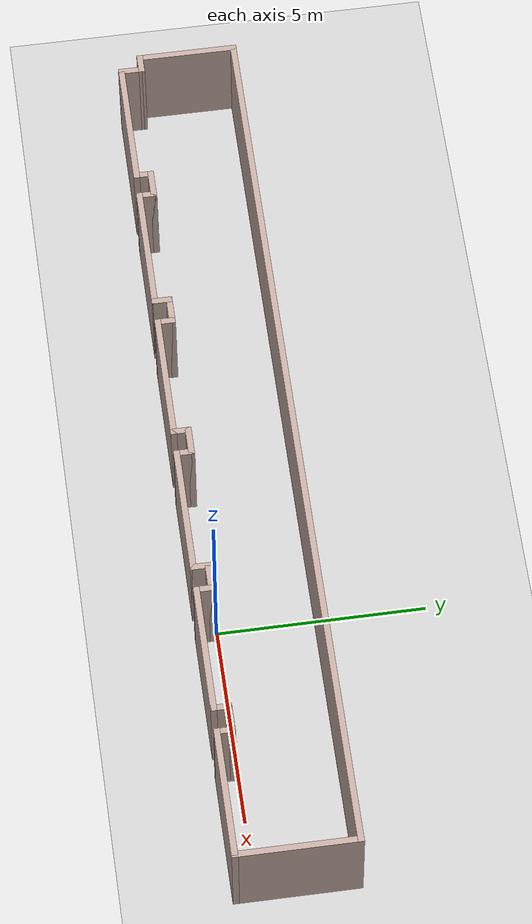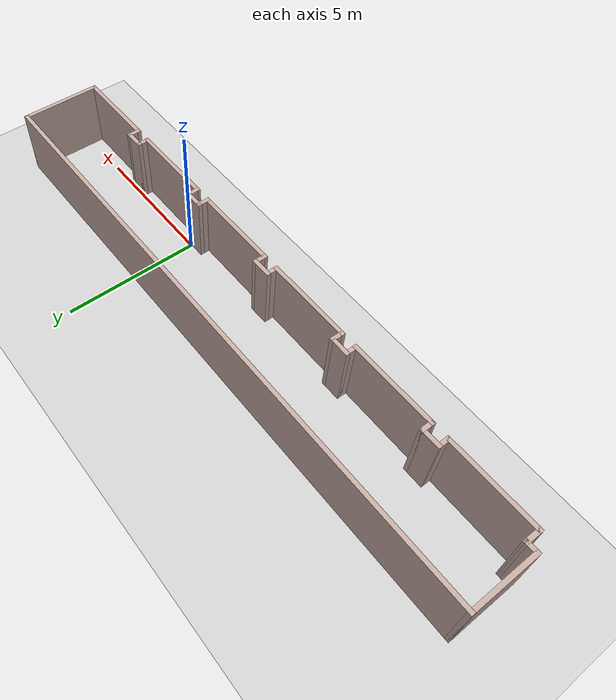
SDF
<sdf version="1.7">
 <world name="default">
  <light name="sun" type="directional">
   <pose>0 0 10 0 -0 0</pose>
   <diffuse>0.8 0.8 0.8 1</diffuse>
   <specular>0.2 0.2 0.2 1</specular>
   <attenuation>
    <range>1000</range>
    <constant>0.9</constant>
    <linear>0.01</linear>
    <quadratic>0.001</quadratic>
   </attenuation>
   <direction>-0.5 0.1 -0.9</direction>
   <spot><inner_angle>0</inner_angle><outer_angle>0</outer_angle><falloff>0</falloff></spot>
  </light>
  <plugin name="gazebo_ros_state" filename="libgazebo_ros_state.so">
   <ros>
    <namespace>/</namespace>
    <remapping>model_states:=model_states</remapping>
    <remapping>link_states:=link_states</remapping>
   </ros>
   <update_rate>50.0</update_rate>
  </plugin>
  <model name="ground_plane">
   <static>1</static>
   <link name="link">
    <collision name="collision">
     <geometry><plane><normal>0 0 1</normal><size>100 100</size></plane></geometry>
     <surface><friction><ode><mu>100</mu><mu2>50</mu2></ode></friction></surface>
    </collision>
    <visual name="visual">
     <cast_shadows>0</cast_shadows>
     <geometry><plane><normal>0 0 1</normal><size>100 100</size></plane></geometry>
     <material>
      <script><uri>file://media/materials/scripts/gazebo.material</uri><name>Gazebo/Grey</name></script>
     </material>
    </visual>
   </link>
  </model>
  <gravity>0 0 -9.8</gravity>
  <magnetic_field>6e-06 2.3e-05 -4.2e-05</magnetic_field>
  <atmosphere type="adiabatic"/>
  <physics type="ode">
   <max_step_size>0.001</max_step_size>
   <real_time_factor>1</real_time_factor>
   <real_time_update_rate>1000</real_time_update_rate>
  </physics>
  <scene><ambient>0.4 0.4 0.4 1</ambient><background>0.7 0.7 0.7 1</background><shadows>1</shadows></scene>
  <audio><device>default</device></audio>
  <spherical_coordinates>
   <surface_model>EARTH_WGS84</surface_model>
   <latitude_deg>0</latitude_deg>
   <longitude_deg>0</longitude_deg>
   <elevation>0</elevation>
   <heading_deg>0</heading_deg>
  </spherical_coordinates>
  <model name="school_8F">
   <allow_auto_disable>false</allow_auto_disable>
   <pose>-4.0978 0.96821 0 0 -0 0</pose>
   <link name="Wall_0">
    <collision name="Wall_0_Collision">
     <geometry><box><size>22.16 0.15 2.5</size></box></geometry>
     <pose>0 0 1.25 0 -0 0</pose>
    </collision>
    <visual name="Wall_0_Visual">
     <pose>0 0 1.25 0 -0 0</pose>
     <geometry><box><size>22.16 0.15 2.5</size></box></geometry>
     <material>
      <script><uri>file://media/materials/scripts/gazebo.material</uri><name>Gazebo/Grey</name></script>
      <ambient>0.760784 0.662745 0.627451 1</ambient>
     </material>
     <meta><layer>0</layer></meta>
    </visual>
    <pose>0 1.42524 0 0 -0 0</pose>
   </link>
   <link name="Wall_10">
    <collision name="Wall_10_Collision">
     <geometry><box><size>0.75 0.15 2.5</size></box></geometry>
     <pose>0 0 1.25 0 -0 0</pose>
    </collision>
    <visual name="Wall_10_Visual">
     <pose>0 0 1.25 0 -0 0</pose>
     <geometry><box><size>0.75 0.15 2.5</size></box></geometry>
     <material>
      <script><uri>file://media/materials/scripts/gazebo.material</uri><name>Gazebo/Grey</name></script>
      <ambient>0.760784 0.662745 0.627451 1</ambient>
     </material>
     <meta><layer>0</layer></meta>
    </visual>
    <pose>3.905 -1.07476 0 0 -0 3.14159</pose>
   </link>
   <link name="Wall_11">
    <collision name="Wall_11_Collision">
     <geometry><box><size>0.5 0.15 2.5</size></box></geometry>
     <pose>0 0 1.25 0 -0 0</pose>
    </collision>
    <visual name="Wall_11_Visual">
     <pose>0 0 1.25 0 -0 0</pose>
     <geometry><box><size>0.5 0.15 2.5</size></box></geometry>
     <material>
      <script><uri>file://media/materials/scripts/gazebo.material</uri><name>Gazebo/Grey</name></script>
      <ambient>0.760784 0.662745 0.627451 1</ambient>
     </material>
     <meta><layer>0</layer></meta>
    </visual>
    <pose>3.605 -1.24976 0 0 -0 -1.5708</pose>
   </link>
   <link name="Wall_13">
    <collision name="Wall_13_Collision">
     <geometry><box><size>3.25 0.15 2.5</size></box></geometry>
     <pose>0 0 1.25 0 -0 0</pose>
    </collision>
    <visual name="Wall_13_Visual">
     <pose>0 0 1.25 0 -0 0</pose>
     <geometry><box><size>3.25 0.15 2.5</size></box></geometry>
     <material>
      <script><uri>file://media/materials/scripts/gazebo.material</uri><name>Gazebo/Grey</name></script>
      <ambient>0.760784 0.662745 0.627451 1</ambient>
     </material>
     <meta><layer>0</layer></meta>
    </visual>
    <pose>2.055 -1.42476 0 0 -0 3.14159</pose>
   </link>
   <link name="Wall_14">
    <collision name="Wall_14_Collision">
     <geometry><box><size>0.5 0.15 2.5</size></box></geometry>
     <pose>0 0 1.25 0 -0 0</pose>
    </collision>
    <visual name="Wall_14_Visual">
     <pose>0 0 1.25 0 -0 0</pose>
     <geometry><box><size>0.5 0.15 2.5</size></box></geometry>
     <material>
      <script><uri>file://media/materials/scripts/gazebo.material</uri><name>Gazebo/Grey</name></script>
      <ambient>0.760784 0.662745 0.627451 1</ambient>
     </material>
     <meta><layer>0</layer></meta>
    </visual>
    <pose>0.505 -1.24976 0 0 -0 1.5708</pose>
   </link>
   <link name="Wall_15">
    <collision name="Wall_15_Collision">
     <geometry><box><size>0.75 0.15 2.5</size></box></geometry>
     <pose>0 0 1.25 0 -0 0</pose>
    </collision>
    <visual name="Wall_15_Visual">
     <pose>0 0 1.25 0 -0 0</pose>
     <geometry><box><size>0.75 0.15 2.5</size></box></geometry>
     <material>
      <script><uri>file://media/materials/scripts/gazebo.material</uri><name>Gazebo/Grey</name></script>
      <ambient>0.760784 0.662745 0.627451 1</ambient>
     </material>
     <meta><layer>0</layer></meta>
    </visual>
    <pose>0.205 -1.07476 0 0 -0 3.14159</pose>
   </link>
   <link name="Wall_16">
    <collision name="Wall_16_Collision">
     <geometry><box><size>0.5 0.15 2.5</size></box></geometry>
     <pose>0 0 1.25 0 -0 0</pose>
    </collision>
    <visual name="Wall_16_Visual">
     <pose>0 0 1.25 0 -0 0</pose>
     <geometry><box><size>0.5 0.15 2.5</size></box></geometry>
     <material>
      <script><uri>file://media/materials/scripts/gazebo.material</uri><name>Gazebo/Grey</name></script>
      <ambient>0.760784 0.662745 0.627451 1</ambient>
     </material>
     <meta><layer>0</layer></meta>
    </visual>
    <pose>-0.095 -1.24976 0 0 -0 -1.5708</pose>
   </link>
   <link name="Wall_17">
    <collision name="Wall_17_Collision">
     <geometry><box><size>3.25 0.15 2.5</size></box></geometry>
     <pose>0 0 1.25 0 -0 0</pose>
    </collision>
    <visual name="Wall_17_Visual">
     <pose>0 0 1.25 0 -0 0</pose>
     <geometry><box><size>3.25 0.15 2.5</size></box></geometry>
     <material>
      <script><uri>file://media/materials/scripts/gazebo.material</uri><name>Gazebo/Grey</name></script>
      <ambient>0.760784 0.662745 0.627451 1</ambient>
     </material>
     <meta><layer>0</layer></meta>
    </visual>
    <pose>-1.645 -1.42476 0 0 -0 3.14159</pose>
   </link>
   <link name="Wall_18">
    <collision name="Wall_18_Collision">
     <geometry><box><size>0.5 0.15 2.5</size></box></geometry>
     <pose>0 0 1.25 0 -0 0</pose>
    </collision>
    <visual name="Wall_18_Visual">
     <pose>0 0 1.25 0 -0 0</pose>
     <geometry><box><size>0.5 0.15 2.5</size></box></geometry>
     <material>
      <script><uri>file://media/materials/scripts/gazebo.material</uri><name>Gazebo/Grey</name></script>
      <ambient>0.760784 0.662745 0.627451 1</ambient>
     </material>
     <meta><layer>0</layer></meta>
    </visual>
    <pose>-3.195 -1.24976 0 0 -0 1.5708</pose>
   </link>
   <link name="Wall_2">
    <collision name="Wall_2_Collision">
     <geometry><box><size>3 0.15 2.5</size></box></geometry>
     <pose>0 0 1.25 0 -0 0</pose>
    </collision>
    <visual name="Wall_2_Visual">
     <pose>0 0 1.25 0 -0 0</pose>
     <geometry><box><size>3 0.15 2.5</size></box></geometry>
     <material>
      <script><uri>file://media/materials/scripts/gazebo.material</uri><name>Gazebo/Grey</name></script>
      <ambient>0.760784 0.662745 0.627451 1</ambient>
     </material>
     <meta><layer>0</layer></meta>
    </visual>
    <pose>11.005 0.00024 0 0 -0 -1.5708</pose>
   </link>
   <link name="Wall_20">
    <collision name="Wall_20_Collision">
     <geometry><box><size>0.75 0.15 2.5</size></box></geometry>
     <pose>0 0 1.25 0 -0 0</pose>
    </collision>
    <visual name="Wall_20_Visual">
     <pose>0 0 1.25 0 -0 0</pose>
     <geometry><box><size>0.75 0.15 2.5</size></box></geometry>
     <material>
      <script><uri>file://media/materials/scripts/gazebo.material</uri><name>Gazebo/Grey</name></script>
      <ambient>0.760784 0.662745 0.627451 1</ambient>
     </material>
     <meta><layer>0</layer></meta>
    </visual>
    <pose>-3.495 -1.07476 0 0 -0 3.14159</pose>
   </link>
   <link name="Wall_21">
    <collision name="Wall_21_Collision">
     <geometry><box><size>0.5 0.15 2.5</size></box></geometry>
     <pose>0 0 1.25 0 -0 0</pose>
    </collision>
    <visual name="Wall_21_Visual">
     <pose>0 0 1.25 0 -0 0</pose>
     <geometry><box><size>0.5 0.15 2.5</size></box></geometry>
     <material>
      <script><uri>file://media/materials/scripts/gazebo.material</uri><name>Gazebo/Grey</name></script>
      <ambient>0.760784 0.662745 0.627451 1</ambient>
     </material>
     <meta><layer>0</layer></meta>
    </visual>
    <pose>-3.795 -1.24976 0 0 -0 -1.5708</pose>
   </link>
   <link name="Wall_23">
    <collision name="Wall_23_Collision">
     <geometry><box><size>3.25 0.15 2.5</size></box></geometry>
     <pose>0 0 1.25 0 -0 0</pose>
    </collision>
    <visual name="Wall_23_Visual">
     <pose>0 0 1.25 0 -0 0</pose>
     <geometry><box><size>3.25 0.15 2.5</size></box></geometry>
     <material>
      <script><uri>file://media/materials/scripts/gazebo.material</uri><name>Gazebo/Grey</name></script>
      <ambient>0.760784 0.662745 0.627451 1</ambient>
     </material>
     <meta><layer>0</layer></meta>
    </visual>
    <pose>-5.345 -1.42476 0 0 -0 3.14159</pose>
   </link>
   <link name="Wall_24">
    <collision name="Wall_24_Collision">
     <geometry><box><size>0.5 0.15 2.5</size></box></geometry>
     <pose>0 0 1.25 0 -0 0</pose>
    </collision>
    <visual name="Wall_24_Visual">
     <pose>0 0 1.25 0 -0 0</pose>
     <geometry><box><size>0.5 0.15 2.5</size></box></geometry>
     <material>
      <script><uri>file://media/materials/scripts/gazebo.material</uri><name>Gazebo/Grey</name></script>
      <ambient>0.760784 0.662745 0.627451 1</ambient>
     </material>
     <meta><layer>0</layer></meta>
    </visual>
    <pose>-6.895 -1.24976 0 0 -0 1.5708</pose>
   </link>
   <link name="Wall_25">
    <collision name="Wall_25_Collision">
     <geometry><box><size>0.75 0.15 2.5</size></box></geometry>
     <pose>0 0 1.25 0 -0 0</pose>
    </collision>
    <visual name="Wall_25_Visual">
     <pose>0 0 1.25 0 -0 0</pose>
     <geometry><box><size>0.75 0.15 2.5</size></box></geometry>
     <material>
      <script><uri>file://media/materials/scripts/gazebo.material</uri><name>Gazebo/Grey</name></script>
      <ambient>0.760784 0.662745 0.627451 1</ambient>
     </material>
     <meta><layer>0</layer></meta>
    </visual>
    <pose>-7.195 -1.07476 0 0 -0 3.14159</pose>
   </link>
   <link name="Wall_26">
    <collision name="Wall_26_Collision">
     <geometry><box><size>0.5 0.15 2.5</size></box></geometry>
     <pose>0 0 1.25 0 -0 0</pose>
    </collision>
    <visual name="Wall_26_Visual">
     <pose>0 0 1.25 0 -0 0</pose>
     <geometry><box><size>0.5 0.15 2.5</size></box></geometry>
     <material>
      <script><uri>file://media/materials/scripts/gazebo.material</uri><name>Gazebo/Grey</name></script>
      <ambient>0.760784 0.662745 0.627451 1</ambient>
     </material>
     <meta><layer>0</layer></meta>
    </visual>
    <pose>-7.4951 -1.24998 0 0 -0 -1.57137</pose>
   </link>
   <link name="Wall_28">
    <collision name="Wall_28_Collision">
     <geometry><box><size>2.5 0.15 2.5</size></box></geometry>
     <pose>0 0 1.25 0 -0 0</pose>
    </collision>
    <visual name="Wall_28_Visual">
     <pose>0 0 1.25 0 -0 0</pose>
     <geometry><box><size>2.5 0.15 2.5</size></box></geometry>
     <material>
      <script><uri>file://media/materials/scripts/gazebo.material</uri><name>Gazebo/Grey</name></script>
      <ambient>0.760784 0.662745 0.627451 1</ambient>
     </material>
     <meta><layer>0</layer></meta>
    </visual>
    <pose>-11.005 0.25024 0 0 -0 -1.5708</pose>
   </link>
   <link name="Wall_29">
    <collision name="Wall_29_Collision">
     <geometry><box><size>0.5 0.15 2.5</size></box></geometry>
     <pose>0 0 1.25 0 -0 0</pose>
    </collision>
    <visual name="Wall_29_Visual">
     <pose>0 0 1.25 0 -0 0</pose>
     <geometry><box><size>0.5 0.15 2.5</size></box></geometry>
     <material>
      <script><uri>file://media/materials/scripts/gazebo.material</uri><name>Gazebo/Grey</name></script>
      <ambient>0.760784 0.662745 0.627451 1</ambient>
     </material>
     <meta><layer>0</layer></meta>
    </visual>
    <pose>-10.83 -0.92476 0 0 -0 0</pose>
   </link>
   <link name="Wall_3">
    <collision name="Wall_3_Collision">
     <geometry><box><size>3.25 0.15 2.5</size></box></geometry>
     <pose>0 0 1.25 0 -0 0</pose>
    </collision>
    <visual name="Wall_3_Visual">
     <pose>0 0 1.25 0 -0 0</pose>
     <geometry><box><size>3.25 0.15 2.5</size></box></geometry>
     <material>
      <script><uri>file://media/materials/scripts/gazebo.material</uri><name>Gazebo/Grey</name></script>
      <ambient>0.760784 0.662745 0.627451 1</ambient>
     </material>
     <meta><layer>0</layer></meta>
    </visual>
    <pose>9.455 -1.42476 0 0 -0 3.14159</pose>
   </link>
   <link name="Wall_30">
    <collision name="Wall_30_Collision">
     <geometry><box><size>0.65045 0.15 2.5</size></box></geometry>
     <pose>0 0 1.25 0 -0 0</pose>
    </collision>
    <visual name="Wall_30_Visual">
     <pose>0 0 1.25 0 -0 0</pose>
     <geometry><box><size>0.65045 0.15 2.5</size></box></geometry>
     <material>
      <script><uri>file://media/materials/scripts/gazebo.material</uri><name>Gazebo/Grey</name></script>
      <ambient>0.760784 0.662745 0.627451 1</ambient>
     </material>
     <meta><layer>0</layer></meta>
    </visual>
    <pose>-10.6551 -1.17498 0 0 -0 -1.5712</pose>
   </link>
   <link name="Wall_31">
    <collision name="Wall_31_Collision">
     <geometry><box><size>3.3102 0.15 2.5</size></box></geometry>
     <pose>0 0 1.25 0 -0 0</pose>
    </collision>
    <visual name="Wall_31_Visual">
     <pose>0 0 1.25 0 -0 0</pose>
     <geometry><box><size>3.3102 0.15 2.5</size></box></geometry>
     <material>
      <script><uri>file://media/materials/scripts/gazebo.material</uri><name>Gazebo/Grey</name></script>
      <ambient>0.760784 0.662745 0.627451 1</ambient>
     </material>
     <meta><layer>0</layer></meta>
    </visual>
    <pose>-9.0752 -1.42521 0 0 -0 0</pose>
   </link>
   <link name="Wall_4">
    <collision name="Wall_4_Collision">
     <geometry><box><size>0.5 0.15 2.5</size></box></geometry>
     <pose>0 0 1.25 0 -0 0</pose>
    </collision>
    <visual name="Wall_4_Visual">
     <pose>0 0 1.25 0 -0 0</pose>
     <geometry><box><size>0.5 0.15 2.5</size></box></geometry>
     <material>
      <script><uri>file://media/materials/scripts/gazebo.material</uri><name>Gazebo/Grey</name></script>
      <ambient>0.760784 0.662745 0.627451 1</ambient>
     </material>
     <meta><layer>0</layer></meta>
    </visual>
    <pose>7.905 -1.24976 0 0 -0 1.5708</pose>
   </link>
   <link name="Wall_6">
    <collision name="Wall_6_Collision">
     <geometry><box><size>0.75 0.15 2.5</size></box></geometry>
     <pose>0 0 1.25 0 -0 0</pose>
    </collision>
    <visual name="Wall_6_Visual">
     <pose>0 0 1.25 0 -0 0</pose>
     <geometry><box><size>0.75 0.15 2.5</size></box></geometry>
     <material>
      <script><uri>file://media/materials/scripts/gazebo.material</uri><name>Gazebo/Grey</name></script>
      <ambient>0.760784 0.662745 0.627451 1</ambient>
     </material>
     <meta><layer>0</layer></meta>
    </visual>
    <pose>7.605 -1.07476 0 0 -0 3.14159</pose>
   </link>
   <link name="Wall_7">
    <collision name="Wall_7_Collision">
     <geometry><box><size>0.5 0.15 2.5</size></box></geometry>
     <pose>0 0 1.25 0 -0 0</pose>
    </collision>
    <visual name="Wall_7_Visual">
     <pose>0 0 1.25 0 -0 0</pose>
     <geometry><box><size>0.5 0.15 2.5</size></box></geometry>
     <material>
      <script><uri>file://media/materials/scripts/gazebo.material</uri><name>Gazebo/Grey</name></script>
      <ambient>0.760784 0.662745 0.627451 1</ambient>
     </material>
     <meta><layer>0</layer></meta>
    </visual>
    <pose>7.305 -1.24976 0 0 -0 -1.5708</pose>
   </link>
   <link name="Wall_8">
    <collision name="Wall_8_Collision">
     <geometry><box><size>3.25 0.15 2.5</size></box></geometry>
     <pose>0 0 1.25 0 -0 0</pose>
    </collision>
    <visual name="Wall_8_Visual">
     <pose>0 0 1.25 0 -0 0</pose>
     <geometry><box><size>3.25 0.15 2.5</size></box></geometry>
     <material>
      <script><uri>file://media/materials/scripts/gazebo.material</uri><name>Gazebo/Grey</name></script>
      <ambient>0.760784 0.662745 0.627451 1</ambient>
     </material>
     <meta><layer>0</layer></meta>
    </visual>
    <pose>5.755 -1.42476 0 0 -0 3.14159</pose>
   </link>
   <link name="Wall_9">
    <collision name="Wall_9_Collision">
     <geometry><box><size>0.5 0.15 2.5</size></box></geometry>
     <pose>0 0 1.25 0 -0 0</pose>
    </collision>
    <visual name="Wall_9_Visual">
     <pose>0 0 1.25 0 -0 0</pose>
     <geometry><box><size>0.5 0.15 2.5</size></box></geometry>
     <material>
      <script><uri>file://media/materials/scripts/gazebo.material</uri><name>Gazebo/Grey</name></script>
      <ambient>0.760784 0.662745 0.627451 1</ambient>
     </material>
     <meta><layer>0</layer></meta>
    </visual>
    <pose>4.205 -1.24976 0 0 -0 1.5708</pose>
   </link>
   <static>1</static>
  </model>
 </world>
</sdf>
